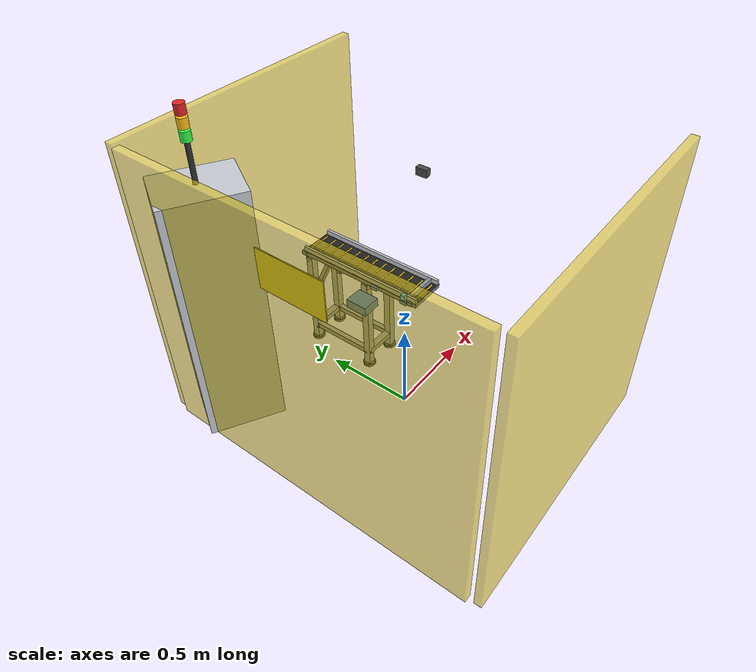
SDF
<sdf version="1.6">
 <world name="default">
  <model name="overhead_camera_model">
   <static>true</static>
   <pose>0.18 0.03 1.35 0 1.5708 0</pose>
   <link name="camera_link">
    <sensor name="top_camera" type="camera">
     <always_on>true</always_on>
     <update_rate>30</update_rate>
     <visualize>false</visualize>
     <camera>
      <horizontal_fov>1.25</horizontal_fov>
      <image><width>1280</width><height>720</height><format>R8G8B8</format></image>
      <clip><near>0.01</near><far>10.0</far></clip>
     </camera>
     <plugin name="overhead_camera_driver" filename="libgazebo_ros_camera.so">
      <ros>
       <remapping>~/image_raw:=/top_camera/image_raw</remapping>
       <remapping>~/camera_info:=/top_camera/camera_info</remapping>
      </ros>
      <camera_name>top_camera</camera_name>
      <frame_name>top_camera_link</frame_name>
     </plugin>
    </sensor>
    <visual name="cam_housing">
     <geometry><box><size>0.04 0.06 0.03</size></box></geometry>
     <material><ambient>0.2 0.2 0.2 1</ambient><diffuse>0.3 0.3 0.3 1</diffuse></material>
    </visual>
   </link>
  </model>
  <model name="conveyor_system">
   <link name="conveyor_frame">
    <static>true</static>
    <visual name="bed_chassis_vis">
     <pose>0.20 0.38 0.612 0 0 0</pose>
     <geometry><box><size>0.210 0.760 0.024</size></box></geometry>
     <material>
      <ambient>0.32 0.34 0.36 1</ambient>
      <diffuse>0.42 0.44 0.48 1</diffuse>
      <specular>0.6 0.65 0.7 1</specular>
     </material>
    </visual>
    <collision name="slider_bed_collision">
     <pose>0.20 0.38 0.627 0 0 0</pose>
     <geometry><box><size>0.165 0.760 0.004</size></box></geometry>
     <surface>
      <friction>
       <ode><mu>1.5</mu><mu2>1.5</mu2></ode>
       <torsional><coefficient>5.0</coefficient><patch_radius>0.015</patch_radius></torsional>
      </friction>
      <contact>
       <ode><kp>500000.0</kp><kd>500.0</kd><max_vel>0.005</max_vel><min_depth>0.001</min_depth></ode>
      </contact>
      <bounce><restitution_coefficient>0.0</restitution_coefficient><threshold>1000000.0</threshold></bounce>
     </surface>
    </collision>
    <collision name="left_rail_col">
     <pose>0.105 0.38 0.638 0 0 0</pose>
     <geometry><box><size>0.015 0.760 0.030</size></box></geometry>
     <surface>
      <friction><ode><mu>0.05</mu><mu2>0.05</mu2></ode></friction>
      <contact>
       <ode><kp>1000000.0</kp><kd>100.0</kd><max_vel>0.005</max_vel><min_depth>0.001</min_depth></ode>
      </contact>
     </surface>
    </collision>
    <visual name="left_rail_vis">
     <pose>0.105 0.38 0.638 0 0 0</pose>
     <geometry><box><size>0.015 0.760 0.030</size></box></geometry>
     <material>
      <ambient>0.65 0.65 0.68 1</ambient>
      <diffuse>0.8 0.8 0.82 1</diffuse>
      <specular>0.8 0.8 0.8 1</specular>
     </material>
    </visual>
    <collision name="right_rail_col">
     <pose>0.295 0.38 0.638 0 0 0</pose>
     <geometry><box><size>0.015 0.760 0.030</size></box></geometry>
     <surface>
      <friction><ode><mu>0.05</mu><mu2>0.05</mu2></ode></friction>
      <contact>
       <ode><kp>1000000.0</kp><kd>100.0</kd><max_vel>0.005</max_vel><min_depth>0.001</min_depth></ode>
      </contact>
     </surface>
    </collision>
    <visual name="right_rail_vis">
     <pose>0.295 0.38 0.638 0 0 0</pose>
     <geometry><box><size>0.015 0.760 0.030</size></box></geometry>
     <material>
      <ambient>0.65 0.65 0.68 1</ambient>
      <diffuse>0.8 0.8 0.82 1</diffuse>
      <specular>0.8 0.8 0.8 1</specular>
     </material>
    </visual>
    <collision name="end_stop_col">
     <pose>0.20 0.045 0.638 0 0 0</pose>
     <geometry><box><size>0.180 0.020 0.030</size></box></geometry>
     <surface>
      <friction><ode><mu>0.05</mu><mu2>0.05</mu2></ode></friction>
      <contact>
       <ode><kp>500000.0</kp><kd>500.0</kd><max_vel>0.005</max_vel><min_depth>0.001</min_depth></ode>
      </contact>
      <bounce><restitution_coefficient>0.0</restitution_coefficient><threshold>1000000.0</threshold></bounce>
     </surface>
    </collision>
    <visual name="end_stop_vis">
     <pose>0.20 0.045 0.638 0 0 0</pose>
     <geometry><box><size>0.180 0.020 0.030</size></box></geometry>
     <material>
      <ambient>0.4 0.42 0.45 1</ambient>
      <diffuse>0.55 0.58 0.62 1</diffuse>
      <specular>0.7 0.75 0.8 1</specular>
     </material>
    </visual>
    <visual name="sensor_bracket">
     <pose>0.090 0.070 0.645 0 0 0</pose>
     <geometry><box><size>0.025 0.025 0.030</size></box></geometry>
     <material><ambient>0.1 0.7 0.9 1</ambient><diffuse>0.2 0.8 1.0 1</diffuse></material>
    </visual>
    <visual name="sensor_beam_lens">
     <pose>0.103 0.070 0.645 0 1.5708 0</pose>
     <geometry><cylinder><radius>0.004</radius><length>0.002</length></cylinder></geometry>
     <material><ambient>1 0 0 1</ambient><diffuse>1 0 0 1</diffuse><emissive>1 0 0 1</emissive></material>
    </visual>
    <visual name="clamp_f_l_vis">
     <pose>0.095 0.070 0.612 0 0 0</pose>
     <geometry><box><size>0.030 0.040 0.020</size></box></geometry>
     <material><ambient>0.2 0.4 0.7 1</ambient><diffuse>0.25 0.5 0.8 1</diffuse></material>
    </visual>
    <visual name="clamp_f_r_vis">
     <pose>0.305 0.070 0.612 0 0 0</pose>
     <geometry><box><size>0.030 0.040 0.020</size></box></geometry>
     <material><ambient>0.2 0.4 0.7 1</ambient><diffuse>0.25 0.5 0.8 1</diffuse></material>
    </visual>
    <visual name="clamp_m_l_vis">
     <pose>0.095 0.260 0.612 0 0 0</pose>
     <geometry><box><size>0.030 0.040 0.020</size></box></geometry>
     <material><ambient>0.2 0.4 0.7 1</ambient><diffuse>0.25 0.5 0.8 1</diffuse></material>
    </visual>
    <visual name="clamp_m_r_vis">
     <pose>0.305 0.260 0.612 0 0 0</pose>
     <geometry><box><size>0.030 0.040 0.020</size></box></geometry>
     <material><ambient>0.2 0.4 0.7 1</ambient><diffuse>0.25 0.5 0.8 1</diffuse></material>
    </visual>
    <visual name="stand1_leg_l_vis">
     <pose>0.105 0.330 0.300 0 0 0</pose>
     <geometry><box><size>0.040 0.040 0.600</size></box></geometry>
     <material><ambient>0.5 0.52 0.55 1</ambient><diffuse>0.65 0.68 0.72 1</diffuse></material>
    </visual>
    <visual name="stand1_leg_r_vis">
     <pose>0.295 0.330 0.300 0 0 0</pose>
     <geometry><box><size>0.040 0.040 0.600</size></box></geometry>
     <material><ambient>0.5 0.52 0.55 1</ambient><diffuse>0.65 0.68 0.72 1</diffuse></material>
    </visual>
    <visual name="stand1_upper_vis">
     <pose>0.200 0.330 0.585 0 0 0</pose>
     <geometry><box><size>0.230 0.040 0.030</size></box></geometry>
     <material><ambient>0.45 0.47 0.50 1</ambient><diffuse>0.6 0.62 0.65 1</diffuse></material>
    </visual>
    <visual name="stand1_lower_vis">
     <pose>0.200 0.330 0.100 0 0 0</pose>
     <geometry><box><size>0.230 0.040 0.030</size></box></geometry>
     <material><ambient>0.45 0.47 0.50 1</ambient><diffuse>0.6 0.62 0.65 1</diffuse></material>
    </visual>
    <visual name="stand1_foot_l">
     <pose>0.105 0.330 0.008 0 0 0</pose>
     <geometry><cylinder><radius>0.035</radius><length>0.016</length></cylinder></geometry>
     <material><ambient>0.2 0.2 0.2 1</ambient><diffuse>0.25 0.25 0.25 1</diffuse></material>
    </visual>
    <visual name="stand1_foot_r">
     <pose>0.295 0.330 0.008 0 0 0</pose>
     <geometry><cylinder><radius>0.035</radius><length>0.016</length></cylinder></geometry>
     <material><ambient>0.2 0.2 0.2 1</ambient><diffuse>0.25 0.25 0.25 1</diffuse></material>
    </visual>
    <visual name="stand2_leg_l_vis">
     <pose>0.105 0.720 0.300 0 0 0</pose>
     <geometry><box><size>0.040 0.040 0.600</size></box></geometry>
     <material><ambient>0.5 0.52 0.55 1</ambient><diffuse>0.65 0.68 0.72 1</diffuse></material>
    </visual>
    <visual name="stand2_leg_r_vis">
     <pose>0.295 0.720 0.300 0 0 0</pose>
     <geometry><box><size>0.040 0.040 0.600</size></box></geometry>
     <material><ambient>0.5 0.52 0.55 1</ambient><diffuse>0.65 0.68 0.72 1</diffuse></material>
    </visual>
    <visual name="stand2_upper_vis">
     <pose>0.200 0.720 0.585 0 0 0</pose>
     <geometry><box><size>0.230 0.040 0.030</size></box></geometry>
     <material><ambient>0.45 0.47 0.50 1</ambient><diffuse>0.6 0.62 0.65 1</diffuse></material>
    </visual>
    <visual name="stand2_lower_vis">
     <pose>0.200 0.720 0.100 0 0 0</pose>
     <geometry><box><size>0.230 0.040 0.030</size></box></geometry>
     <material><ambient>0.45 0.47 0.50 1</ambient><diffuse>0.6 0.62 0.65 1</diffuse></material>
    </visual>
    <visual name="stand2_foot_l">
     <pose>0.105 0.720 0.008 0 0 0</pose>
     <geometry><cylinder><radius>0.035</radius><length>0.016</length></cylinder></geometry>
     <material><ambient>0.2 0.2 0.2 1</ambient><diffuse>0.25 0.25 0.25 1</diffuse></material>
    </visual>
    <visual name="stand2_foot_r">
     <pose>0.295 0.720 0.008 0 0 0</pose>
     <geometry><cylinder><radius>0.035</radius><length>0.016</length></cylinder></geometry>
     <material><ambient>0.2 0.2 0.2 1</ambient><diffuse>0.25 0.25 0.25 1</diffuse></material>
    </visual>
    <visual name="gusset_l">
     <pose>0.105 0.640 0.500 0 0.785 0</pose>
     <geometry><box><size>0.025 0.025 0.180</size></box></geometry>
     <material><ambient>0.4 0.42 0.45 1</ambient></material>
    </visual>
    <visual name="gusset_r">
     <pose>0.295 0.640 0.500 0 0.785 0</pose>
     <geometry><box><size>0.025 0.025 0.180</size></box></geometry>
     <material><ambient>0.4 0.42 0.45 1</ambient></material>
    </visual>
    <visual name="stringer_l">
     <pose>0.105 0.525 0.100 0 0 0</pose>
     <geometry><box><size>0.030 0.390 0.030</size></box></geometry>
     <material><ambient>0.45 0.47 0.50 1</ambient><diffuse>0.6 0.62 0.65 1</diffuse></material>
    </visual>
    <visual name="stringer_r">
     <pose>0.295 0.525 0.100 0 0 0</pose>
     <geometry><box><size>0.030 0.390 0.030</size></box></geometry>
     <material><ambient>0.45 0.47 0.50 1</ambient><diffuse>0.6 0.62 0.65 1</diffuse></material>
    </visual>
    <visual name="bearing_head_l">
     <pose>0.095 0.038 0.615 0 0 0</pose>
     <geometry><box><size>0.015 0.030 0.025</size></box></geometry>
     <material><ambient>0.2 0.4 0.7 1</ambient></material>
    </visual>
    <visual name="bearing_head_r">
     <pose>0.305 0.038 0.615 0 0 0</pose>
     <geometry><box><size>0.015 0.030 0.025</size></box></geometry>
     <material><ambient>0.2 0.4 0.7 1</ambient></material>
    </visual>
    <visual name="bearing_tail_l">
     <pose>0.095 0.755 0.615 0 0 0</pose>
     <geometry><box><size>0.015 0.030 0.025</size></box></geometry>
     <material><ambient>0.2 0.4 0.7 1</ambient></material>
    </visual>
    <visual name="bearing_tail_r">
     <pose>0.305 0.755 0.615 0 0 0</pose>
     <geometry><box><size>0.015 0.030 0.025</size></box></geometry>
     <material><ambient>0.2 0.4 0.7 1</ambient></material>
    </visual>
   </link>
   <joint name="conveyor_world_anchor" type="fixed"><parent>world</parent><child>conveyor_frame</child></joint>
   <link name="head_roller">
    <pose>0.200 0.038 0.615 0 1.5708 0</pose>
    <inertial>
     <mass>0.5</mass>
     <inertia><ixx>0.001</ixx><ixy>0</ixy><ixz>0</ixz><iyy>0.001</iyy><iyz>0</iyz><izz>0.001</izz></inertia>
    </inertial>
    <visual name="head_roller_drum">
     <geometry><cylinder><radius>0.014</radius><length>0.165</length></cylinder></geometry>
     <material>
      <ambient>0.6 0.65 0.7 1</ambient>
      <diffuse>0.75 0.8 0.85 1</diffuse>
      <specular>0.9 0.9 0.9 1</specular>
     </material>
    </visual>
    <visual name="head_roller_stripe">
     <pose>0.013 0 0 0 0 0</pose>
     <geometry><box><size>0.003 0.003 0.165</size></box></geometry>
     <material><ambient>0.9 0.1 0.1 1</ambient><diffuse>1.0 0.1 0.1 1</diffuse></material>
    </visual>
   </link>
   <joint name="head_roller_joint" type="continuous">
    <parent>conveyor_frame</parent>
    <child>head_roller</child>
    <axis><xyz>1 0 0</xyz><dynamics><damping>0.01</damping></dynamics></axis>
   </joint>
   <link name="tail_roller">
    <pose>0.200 0.755 0.615 0 1.5708 0</pose>
    <inertial>
     <mass>0.5</mass>
     <inertia><ixx>0.001</ixx><ixy>0</ixy><ixz>0</ixz><iyy>0.001</iyy><iyz>0</iyz><izz>0.001</izz></inertia>
    </inertial>
    <visual name="tail_roller_drum">
     <geometry><cylinder><radius>0.014</radius><length>0.165</length></cylinder></geometry>
     <material>
      <ambient>0.6 0.65 0.7 1</ambient>
      <diffuse>0.75 0.8 0.85 1</diffuse>
      <specular>0.9 0.9 0.9 1</specular>
     </material>
    </visual>
    <visual name="tail_roller_stripe">
     <pose>0.013 0 0 0 0 0</pose>
     <geometry><box><size>0.003 0.003 0.165</size></box></geometry>
     <material><ambient>0.9 0.1 0.1 1</ambient><diffuse>1.0 0.1 0.1 1</diffuse></material>
    </visual>
   </link>
   <joint name="tail_roller_joint" type="continuous">
    <parent>conveyor_frame</parent>
    <child>tail_roller</child>
    <axis><xyz>1 0 0</xyz><dynamics><damping>0.01</damping></dynamics></axis>
   </joint>
   <link name="belt_visual_surface">
    <pose>0.20 0.380 0.6285 0 0 0</pose>
    <inertial>
     <mass>0.1</mass>
     <inertia><ixx>0.001</ixx><ixy>0</ixy><ixz>0</ixz><iyy>0.001</iyy><iyz>0</iyz><izz>0.001</izz></inertia>
    </inertial>
    <visual name="belt_backing">
     <geometry><box><size>0.162 0.760 0.001</size></box></geometry>
     <material>
      <ambient>0.10 0.10 0.10 1</ambient>
      <diffuse>0.14 0.14 0.14 1</diffuse>
      <specular>0.03 0.03 0.03 1</specular>
     </material>
    </visual>
    <visual name="slat_01">
     <pose>0 -0.360 0.0006 0 0 0</pose>
     <geometry><box><size>0.145 0.008 0.0002</size></box></geometry>
     <material><ambient>0.9 0.8 0.1 1</ambient><diffuse>1.0 0.85 0.0 1</diffuse></material>
    </visual>
    <visual name="slat_02">
     <pose>0 -0.300 0.0006 0 0 0</pose>
     <geometry><box><size>0.145 0.008 0.0002</size></box></geometry>
     <material><ambient>0.9 0.8 0.1 1</ambient><diffuse>1.0 0.85 0.0 1</diffuse></material>
    </visual>
    <visual name="slat_03">
     <pose>0 -0.240 0.0006 0 0 0</pose>
     <geometry><box><size>0.145 0.008 0.0002</size></box></geometry>
     <material><ambient>0.9 0.8 0.1 1</ambient><diffuse>1.0 0.85 0.0 1</diffuse></material>
    </visual>
    <visual name="slat_04">
     <pose>0 -0.180 0.0006 0 0 0</pose>
     <geometry><box><size>0.145 0.008 0.0002</size></box></geometry>
     <material><ambient>0.9 0.8 0.1 1</ambient><diffuse>1.0 0.85 0.0 1</diffuse></material>
    </visual>
    <visual name="slat_05">
     <pose>0 -0.120 0.0006 0 0 0</pose>
     <geometry><box><size>0.145 0.008 0.0002</size></box></geometry>
     <material><ambient>0.9 0.8 0.1 1</ambient><diffuse>1.0 0.85 0.0 1</diffuse></material>
    </visual>
    <visual name="slat_06">
     <pose>0 -0.060 0.0006 0 0 0</pose>
     <geometry><box><size>0.145 0.008 0.0002</size></box></geometry>
     <material><ambient>0.9 0.8 0.1 1</ambient><diffuse>1.0 0.85 0.0 1</diffuse></material>
    </visual>
    <visual name="slat_07">
     <pose>0  0.000 0.0006 0 0 0</pose>
     <geometry><box><size>0.145 0.008 0.0002</size></box></geometry>
     <material><ambient>0.9 0.8 0.1 1</ambient><diffuse>1.0 0.85 0.0 1</diffuse></material>
    </visual>
    <visual name="slat_08">
     <pose>0  0.060 0.0006 0 0 0</pose>
     <geometry><box><size>0.145 0.008 0.0002</size></box></geometry>
     <material><ambient>0.9 0.8 0.1 1</ambient><diffuse>1.0 0.85 0.0 1</diffuse></material>
    </visual>
    <visual name="slat_09">
     <pose>0  0.120 0.0006 0 0 0</pose>
     <geometry><box><size>0.145 0.008 0.0002</size></box></geometry>
     <material><ambient>0.9 0.8 0.1 1</ambient><diffuse>1.0 0.85 0.0 1</diffuse></material>
    </visual>
    <visual name="slat_10">
     <pose>0  0.180 0.0006 0 0 0</pose>
     <geometry><box><size>0.145 0.008 0.0002</size></box></geometry>
     <material><ambient>0.9 0.8 0.1 1</ambient><diffuse>1.0 0.85 0.0 1</diffuse></material>
    </visual>
    <visual name="slat_11">
     <pose>0  0.240 0.0006 0 0 0</pose>
     <geometry><box><size>0.145 0.008 0.0002</size></box></geometry>
     <material><ambient>0.9 0.8 0.1 1</ambient><diffuse>1.0 0.85 0.0 1</diffuse></material>
    </visual>
    <visual name="slat_12">
     <pose>0  0.300 0.0006 0 0 0</pose>
     <geometry><box><size>0.145 0.008 0.0002</size></box></geometry>
     <material><ambient>0.9 0.8 0.1 1</ambient><diffuse>1.0 0.85 0.0 1</diffuse></material>
    </visual>
    <visual name="slat_13">
     <pose>0  0.360 0.0006 0 0 0</pose>
     <geometry><box><size>0.145 0.008 0.0002</size></box></geometry>
     <material><ambient>0.9 0.8 0.1 1</ambient><diffuse>1.0 0.85 0.0 1</diffuse></material>
    </visual>
   </link>
   <joint name="belt_joint" type="prismatic">
    <parent>conveyor_frame</parent>
    <child>belt_visual_surface</child>
    <axis>
     <xyz>0 -1 0</xyz>
     <limit><lower>0.0</lower><upper>0.060</upper></limit>
     <dynamics><damping>0.1</damping></dynamics>
    </axis>
   </joint>
   <plugin name="aria_conveyor_plugin" filename="libaria_conveyor_plugin.so">
    <ros><namespace>/aria/conveyor</namespace></ros>
    <joint_name>belt_joint</joint_name>
    <max_velocity>0.25</max_velocity>
    <limit>0.060</limit>
    <publish_rate>25.0</publish_rate>
    <initial_power>0.0</initial_power>
   </plugin>
  </model>
  <model name="supply_bin">
   <static>true</static>
   <pose>-0.06 0.22 0.608 0 0 0</pose>
   <link name="link">
    <collision name="c">
     <pose>0 0 0.025 0 0 0</pose>
     <geometry><box><size>0.10 0.12 0.050</size></box></geometry>
    </collision>
    <visual name="v">
     <pose>0 0 0.025 0 0 0</pose>
     <geometry><box><size>0.10 0.12 0.050</size></box></geometry>
     <material><ambient>0.15 0.35 0.7 1</ambient><diffuse>0.2 0.45 0.85 1</diffuse></material>
    </visual>
   </link>
  </model>
  <model name="industrial_control_cabinet">
   <static>true</static>
   <pose>-0.55 0.70 0.0 0 0 -0.52</pose>
   <link name="cabinet_link">
    <collision name="cabinet_col">
     <pose>0 0 0.70 0 0 0</pose>
     <geometry><box><size>0.40 0.30 1.40</size></box></geometry>
    </collision>
    <visual name="cabinet_vis">
     <pose>0 0 0.70 0 0 0</pose>
     <geometry><box><size>0.40 0.30 1.40</size></box></geometry>
     <material><ambient>0.7 0.72 0.75 1</ambient><diffuse>0.8 0.82 0.85 1</diffuse></material>
    </visual>
    <visual name="hmi_screen">
     <pose>0.201 0 1.15 0 0 0</pose>
     <geometry><box><size>0.005 0.20 0.15</size></box></geometry>
     <material>
      <ambient>0.05 0.25 0.4 1</ambient>
      <diffuse>0.1 0.4 0.6 1</diffuse>
      <emissive>0.05 0.2 0.35 1</emissive>
     </material>
    </visual>
    <visual name="estop_button">
     <pose>0.205 0.08 0.95 0 1.5708 0</pose>
     <geometry><cylinder><radius>0.022</radius><length>0.015</length></cylinder></geometry>
     <material><ambient>0.9 0.05 0.05 1</ambient><diffuse>1.0 0.1 0.1 1</diffuse></material>
    </visual>
    <visual name="light_mast">
     <pose>0 0 1.50 0 0 0</pose>
     <geometry><cylinder><radius>0.012</radius><length>0.20</length></cylinder></geometry>
     <material><ambient>0.2 0.2 0.2 1</ambient></material>
    </visual>
    <visual name="stack_green">
     <pose>0 0 1.63 0 0 0</pose>
     <geometry><cylinder><radius>0.025</radius><length>0.05</length></cylinder></geometry>
     <material>
      <ambient>0.1 0.9 0.2 1</ambient>
      <diffuse>0.2 1.0 0.3 1</diffuse>
      <emissive>0.1 0.8 0.2 1</emissive>
     </material>
    </visual>
    <visual name="stack_amber">
     <pose>0 0 1.69 0 0 0</pose>
     <geometry><cylinder><radius>0.025</radius><length>0.05</length></cylinder></geometry>
     <material><ambient>0.8 0.6 0.1 1</ambient><diffuse>1.0 0.75 0.1 1</diffuse></material>
    </visual>
    <visual name="stack_red">
     <pose>0 0 1.75 0 0 0</pose>
     <geometry><cylinder><radius>0.025</radius><length>0.05</length></cylinder></geometry>
     <material><ambient>0.8 0.1 0.1 1</ambient><diffuse>0.9 0.15 0.15 1</diffuse></material>
    </visual>
   </link>
  </model>
  <model name="safety_perimeter_fence">
   <static>true</static>
   <link name="fence_link">
    <collision name="rear_fence_col">
     <pose>-0.75 0.0 0.80 0 0 0</pose>
     <geometry><box><size>0.04 1.80 1.60</size></box></geometry>
    </collision>
    <visual name="rear_fence_frame">
     <pose>-0.75 0.0 0.80 0 0 0</pose>
     <geometry><box><size>0.04 1.80 1.60</size></box></geometry>
     <material><ambient>0.8 0.7 0.1 0.5</ambient><diffuse>0.9 0.8 0.1 0.6</diffuse></material>
    </visual>
    <collision name="left_fence_col">
     <pose>0.0 0.95 0.80 0 0 0</pose>
     <geometry><box><size>1.50 0.04 1.60</size></box></geometry>
    </collision>
    <visual name="left_fence_frame">
     <pose>0.0 0.95 0.80 0 0 0</pose>
     <geometry><box><size>1.50 0.04 1.60</size></box></geometry>
     <material><ambient>0.8 0.7 0.1 0.5</ambient><diffuse>0.9 0.8 0.1 0.6</diffuse></material>
    </visual>
    <collision name="right_fence_col">
     <pose>0.0 -0.95 0.80 0 0 0</pose>
     <geometry><box><size>1.50 0.04 1.60</size></box></geometry>
    </collision>
    <visual name="right_fence_frame">
     <pose>0.0 -0.95 0.80 0 0 0</pose>
     <geometry><box><size>1.50 0.04 1.60</size></box></geometry>
     <material><ambient>0.8 0.7 0.1 0.5</ambient><diffuse>0.9 0.8 0.1 0.6</diffuse></material>
    </visual>
    <visual name="warning_sign">
     <pose>-0.72 0.0 1.30 0 0 0</pose>
     <geometry><box><size>0.005 0.35 0.20</size></box></geometry>
     <material><ambient>0.9 0.8 0.1 1</ambient><diffuse>1.0 0.9 0.1 1</diffuse></material>
    </visual>
   </link>
  </model>
 </world>
</sdf>
